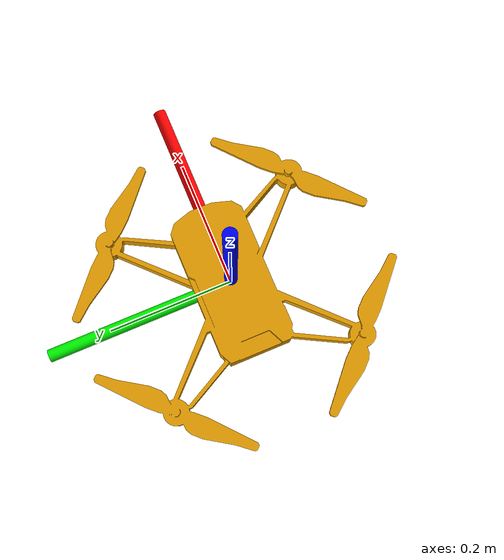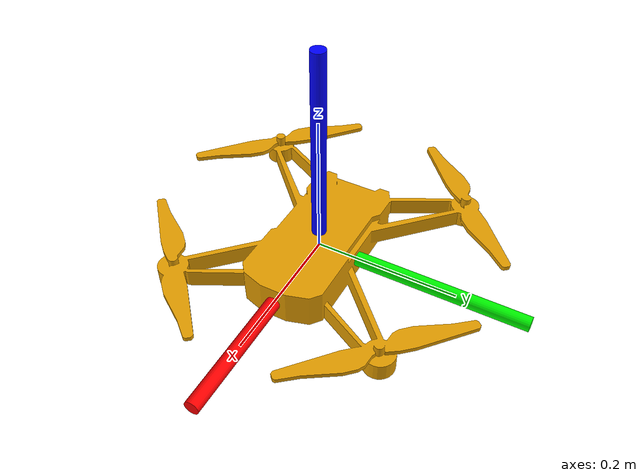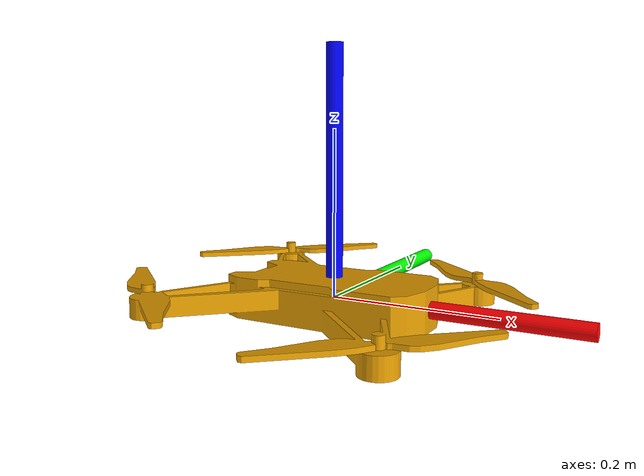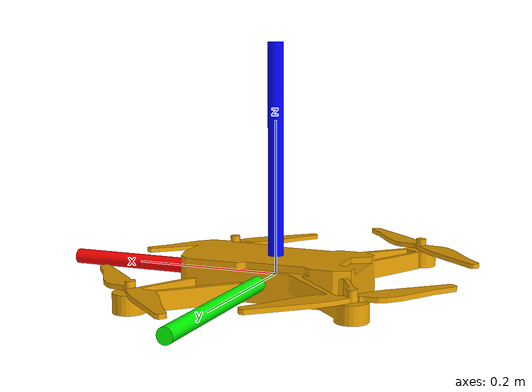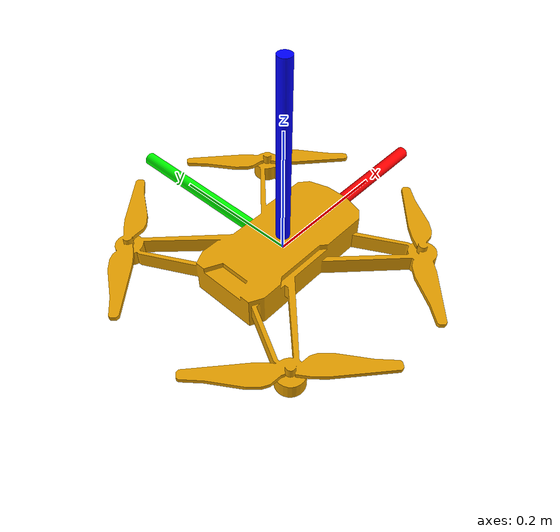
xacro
<?xml version="1.0"?>

<robot name="sequencer_demo">

    <material name="OA">
        <color rgba="0.101960784 0.42745098 0.588235294 1.0"/>
    </material>
    <material name="OARed">
        <color rgba="1.0 0.0 0.0 1.0"/>
    </material>
    <material name="OAGreen">
        <color rgba="0.0 1.0 0.0 1.0"/>
    </material>
    <material name="OABlue">
        <color rgba="0.0 0.0 1.0 1.0"/>
    </material>

    <gazebo reference="link_base">
        <turnGravityOff>true</turnGravityOff>
    </gazebo>
    <gazebo>
        <plugin name="gazebo_ros_template" filename="libgazebo_ros_template.so">
            <TFpubInterval>0.02</TFpubInterval>
        </plugin>
        <plugin name="gazebo_ros_state" filename="libgazebo_ros_state.so">
            <pubInterval>0.02</pubInterval>
            <linkName>link_base</linkName>
        </plugin>
    </gazebo>

    <link name="link_base">
        <visual>
            <origin xyz="0.0 0.0 0.0"/>
            <geometry>
                <mesh filename="package://wai_oa_gazebo/resources/reps/sequencer_demo/sequencer_demo.dae" scale="4.0 4.0 4.0"/>
            </geometry>
        </visual>
        <visual>
            <origin xyz="0.15 0.0 0.0" rpy="0.0 1.570796327 0.0"/>
            <geometry>
                <cylinder length="0.3" radius="0.01"/>
            </geometry>
            <material name="OARed"/>
        </visual>
        <visual>
            <origin xyz="0.0 0.15 0.0" rpy="-1.570796327 0.0 0.0"/>
            <geometry>
                <cylinder length="0.3" radius="0.01"/>
            </geometry>
            <material name="OAGreen"/>
        </visual>
        <visual>
            <origin xyz="0.0 0.0 0.15" rpy="0.0 0.0 0.0"/>
            <geometry>
                <cylinder length="0.3" radius="0.01"/>
            </geometry>
            <material name="OABlue"/>
        </visual>
        <inertial>
            <origin xyz="0.0 0.0 0.0" rpy="0.0 0.0 0.0"/>
            <mass value="1.0"/>
            <inertia  ixx="1.0" ixy="0.0"  ixz="0.0"  iyy="1.0"  iyz="0.0"  izz="1.0"/>
        </inertial>
        <collision>
            <origin xyz="0.0 0.0 0.05" rpy="0.0 0.0 0.0"/>
            <geometry>
                <box size="0.25 0.25 0.1"/>
            </geometry>
        </collision>
    </link>

</robot>
